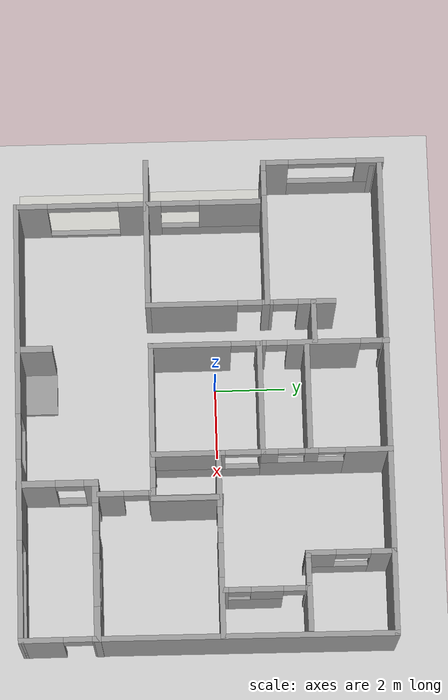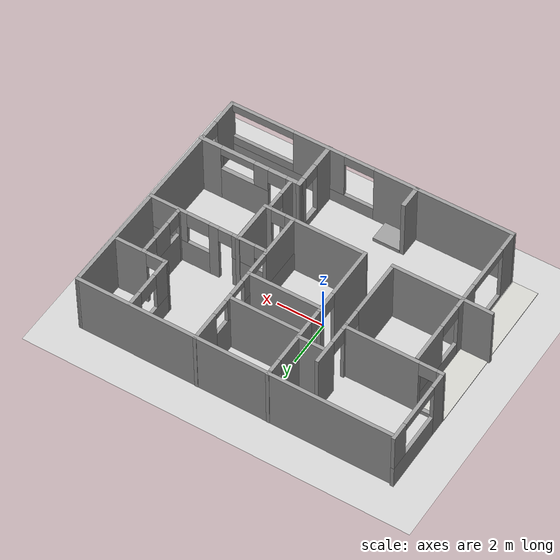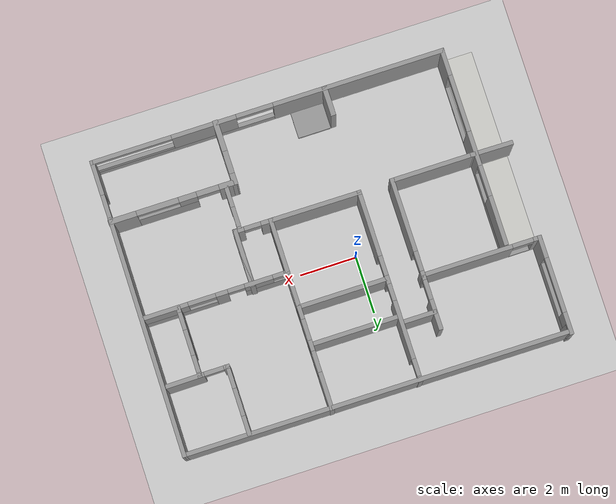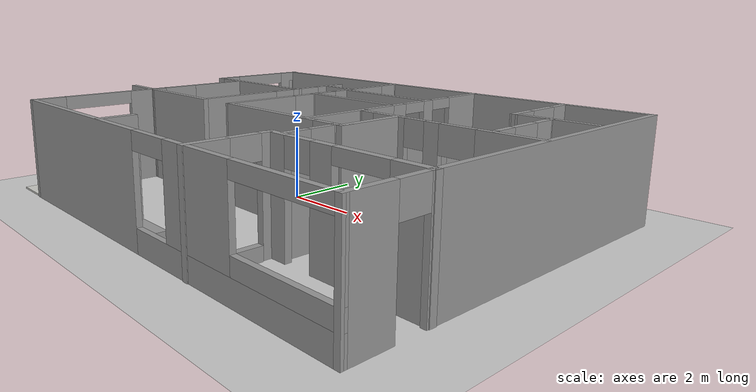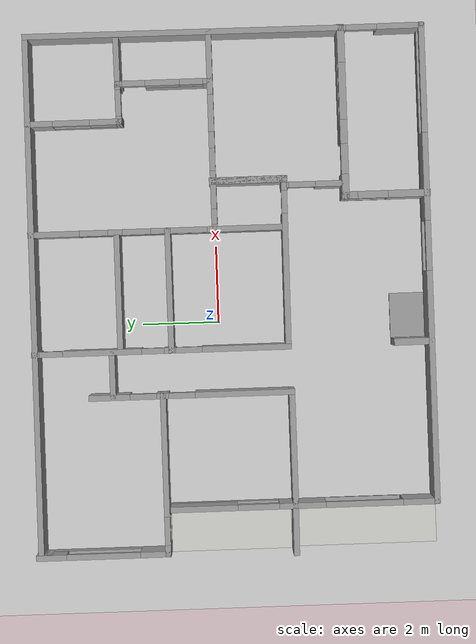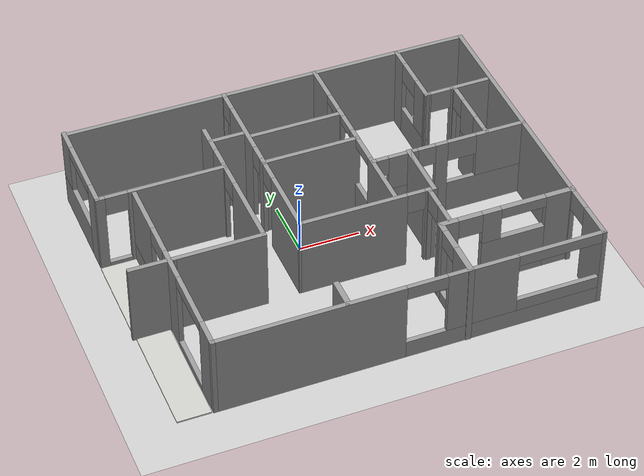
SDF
<sdf version="1.7">
 <world name="default">
  <model name="ground_plane">
   <static>1</static>
   <link name="link">
    <collision name="collision">
     <geometry><plane><normal>0 0 1</normal><size>100 100</size></plane></geometry>
     <surface>
      <contact><collide_bitmask>65535</collide_bitmask></contact>
      <friction><ode><mu>100</mu><mu2>50</mu2></ode></friction>
     </surface>
    </collision>
    <visual name="visual">
     <cast_shadows>0</cast_shadows>
     <geometry><plane><normal>0 0 1</normal><size>100 100</size></plane></geometry>
     <material>
      <script><uri>file://media/materials/scripts/gazebo.material</uri><name>Gazebo/Grey</name></script>
     </material>
    </visual>
   </link>
  </model>
  <model name="VinHouse">
   <pose>0.77427 -0.337194 0 0 -0 0</pose>
   <link name="Stairs_1">
    <visual name="Stairs_1_Visual_0">
     <pose>-0.742932 -4.64062 0.085 0 -0 0</pose>
     <geometry><box><size>1.16 0.904 0.17</size></box></geometry>
     <material>
      <script><uri>file://media/materials/scripts/gazebo.material</uri><name>Gazebo/Grey</name></script>
      <ambient>1 1 1 1</ambient>
     </material>
     <meta><layer>0</layer></meta>
    </visual>
    <collision name="Stairs_1_Collision_0">
     <geometry><box><size>1.16 0.904 0.17</size></box></geometry>
     <pose>-0.742932 -4.64062 0.085 0 -0 0</pose>
    </collision>
   </link>
   <link name="Stairs_3">
    <visual name="Stairs_3_Visual_0">
     <pose>-6.23499 -3.40621 0.025 0 -0 0</pose>
     <geometry><box><size>1.07387 3.64214 0.05</size></box></geometry>
     <material>
      <script><uri>file://media/materials/scripts/gazebo.material</uri><name>Gazebo/CeilingTiled</name></script>
      <ambient>1 1 1 1</ambient>
     </material>
     <meta><layer>0</layer></meta>
    </visual>
    <collision name="Stairs_3_Collision_0">
     <geometry><box><size>1.07387 3.64214 0.05</size></box></geometry>
     <pose>-6.23499 -3.40621 0.025 0 -0 0</pose>
    </collision>
   </link>
   <link name="Stairs_5">
    <visual name="Stairs_5_Visual_0">
     <pose>-6.23214 0.183373 0.025 0 -0 0</pose>
     <geometry><box><size>1.15359 3.17088 0.05</size></box></geometry>
     <material>
      <script><uri>file://media/materials/scripts/gazebo.material</uri><name>Gazebo/CeilingTiled</name></script>
      <ambient>1 1 1 1</ambient>
     </material>
     <meta><layer>0</layer></meta>
    </visual>
    <collision name="Stairs_5_Collision_0">
     <geometry><box><size>1.15359 3.17088 0.05</size></box></geometry>
     <pose>-6.23214 0.183373 0.025 0 -0 0</pose>
    </collision>
   </link>
   <link name="Wall_11">
    <pose>-5.58322 -1.75049 0 0 -0 1.5708</pose>
    <visual name="Wall_11_Visual_0">
     <pose>-3.01958 0 1.4 0 -0 0</pose>
     <geometry><box><size>0.96085 0.15 2.8</size></box></geometry>
     <material>
      <script><uri>file://media/materials/scripts/gazebo.material</uri><name>Gazebo/Grey</name></script>
      <ambient>1 1 1 1</ambient>
     </material>
     <meta><layer>0</layer></meta>
    </visual>
    <collision name="Wall_11_Collision_0">
     <geometry><box><size>0.96085 0.15 2.8</size></box></geometry>
     <pose>-3.01958 0 1.4 0 -0 0</pose>
    </collision>
    <visual name="Wall_11_Visual_1">
     <pose>0.067031 0 1.4 0 -0 0</pose>
     <geometry><box><size>1.21236 0.15 2.8</size></box></geometry>
     <material>
      <script><uri>file://media/materials/scripts/gazebo.material</uri><name>Gazebo/Grey</name></script>
      <ambient>1 1 1 1</ambient>
     </material>
     <meta><layer>0</layer></meta>
    </visual>
    <collision name="Wall_11_Collision_1">
     <geometry><box><size>1.21236 0.15 2.8</size></box></geometry>
     <pose>0.067031 0 1.4 0 -0 0</pose>
    </collision>
    <visual name="Wall_11_Visual_2">
     <pose>-1.53915 0 0 0 -0 0</pose>
     <geometry><box><size>2 0.15 0.37</size></box></geometry>
     <material>
      <script><uri>file://media/materials/scripts/gazebo.material</uri><name>Gazebo/Grey</name></script>
      <ambient>1 1 1 1</ambient>
     </material>
     <meta><layer>0</layer></meta>
    </visual>
    <collision name="Wall_11_Collision_2">
     <geometry><box><size>2 0.15 0.37</size></box></geometry>
     <pose>-1.53915 0 0 0 -0 0</pose>
    </collision>
    <visual name="Wall_11_Visual_3">
     <pose>2.08661 0 0.35 0 -0 0</pose>
     <geometry><box><size>2.82679 0.15 0.7</size></box></geometry>
     <material>
      <script><uri>file://media/materials/scripts/gazebo.material</uri><name>Gazebo/Grey</name></script>
      <ambient>1 1 1 1</ambient>
     </material>
     <meta><layer>0</layer></meta>
    </visual>
    <collision name="Wall_11_Collision_3">
     <geometry><box><size>2.82679 0.15 0.7</size></box></geometry>
     <pose>2.08661 0 0.35 0 -0 0</pose>
    </collision>
    <visual name="Wall_11_Visual_4">
     <pose>2.62661 0 1.75 0 -0 0</pose>
     <geometry><box><size>1.74679 0.15 2.1</size></box></geometry>
     <material>
      <script><uri>file://media/materials/scripts/gazebo.material</uri><name>Gazebo/Grey</name></script>
      <ambient>1 1 1 1</ambient>
     </material>
     <meta><layer>0</layer></meta>
    </visual>
    <collision name="Wall_11_Collision_4">
     <geometry><box><size>1.74679 0.15 2.1</size></box></geometry>
     <pose>2.62661 0 1.75 0 -0 0</pose>
    </collision>
    <visual name="Wall_11_Visual_5">
     <pose>1.21321 0 2.5 0 -0 0</pose>
     <geometry><box><size>1.08 0.15 0.6</size></box></geometry>
     <material>
      <script><uri>file://media/materials/scripts/gazebo.material</uri><name>Gazebo/Grey</name></script>
      <ambient>1 1 1 1</ambient>
     </material>
     <meta><layer>0</layer></meta>
    </visual>
    <collision name="Wall_11_Collision_5">
     <geometry><box><size>1.08 0.15 0.6</size></box></geometry>
     <pose>1.21321 0 2.5 0 -0 0</pose>
    </collision>
    <visual name="Wall_11_Visual_6">
     <pose>-1.53915 0 2.615 0 -0 0</pose>
     <geometry><box><size>2 0.15 0.37</size></box></geometry>
     <material>
      <script><uri>file://media/materials/scripts/gazebo.material</uri><name>Gazebo/Grey</name></script>
      <ambient>1 1 1 1</ambient>
     </material>
     <meta><layer>0</layer></meta>
    </visual>
    <collision name="Wall_11_Collision_6">
     <geometry><box><size>2 0.15 0.37</size></box></geometry>
     <pose>-1.53915 0 2.615 0 -0 0</pose>
    </collision>
   </link>
   <link name="Wall_13">
    <pose>-4.67222 1.84551 0 0 -0 0</pose>
    <visual name="Wall_13_Visual_0">
     <pose>-1.97199 0 1.4 0 -0 0</pose>
     <geometry><box><size>0.30601 0.15 2.8</size></box></geometry>
     <material>
      <script><uri>file://media/materials/scripts/gazebo.material</uri><name>Gazebo/Grey</name></script>
      <ambient>1 1 1 1</ambient>
     </material>
     <meta><layer>0</layer></meta>
    </visual>
    <collision name="Wall_13_Collision_0">
     <geometry><box><size>0.30601 0.15 2.8</size></box></geometry>
     <pose>-1.97199 0 1.4 0 -0 0</pose>
    </collision>
    <visual name="Wall_13_Visual_1">
     <pose>0.518005 0 1.4 0 -0 0</pose>
     <geometry><box><size>3.21399 0.15 2.8</size></box></geometry>
     <material>
      <script><uri>file://media/materials/scripts/gazebo.material</uri><name>Gazebo/Grey</name></script>
      <ambient>1 1 1 1</ambient>
     </material>
     <meta><layer>0</layer></meta>
    </visual>
    <collision name="Wall_13_Collision_1">
     <geometry><box><size>3.21399 0.15 2.8</size></box></geometry>
     <pose>0.518005 0 1.4 0 -0 0</pose>
    </collision>
    <visual name="Wall_13_Visual_2">
     <pose>-1.45399 0 0 0 -0 0</pose>
     <geometry><box><size>0.73 0.15 0.37</size></box></geometry>
     <material>
      <script><uri>file://media/materials/scripts/gazebo.material</uri><name>Gazebo/Grey</name></script>
      <ambient>1 1 1 1</ambient>
     </material>
     <meta><layer>0</layer></meta>
    </visual>
    <collision name="Wall_13_Collision_2">
     <geometry><box><size>0.73 0.15 0.37</size></box></geometry>
     <pose>-1.45399 0 0 0 -0 0</pose>
    </collision>
    <visual name="Wall_13_Visual_3">
     <pose>-1.45399 0 2.465 0 -0 0</pose>
     <geometry><box><size>0.73 0.15 0.67</size></box></geometry>
     <material>
      <script><uri>file://media/materials/scripts/gazebo.material</uri><name>Gazebo/Grey</name></script>
      <ambient>1 1 1 1</ambient>
     </material>
     <meta><layer>0</layer></meta>
    </visual>
    <collision name="Wall_13_Collision_3">
     <geometry><box><size>0.73 0.15 0.67</size></box></geometry>
     <pose>-1.45399 0 2.465 0 -0 0</pose>
    </collision>
   </link>
   <link name="Wall_14">
    <pose>-2.62222 0.170511 0 0 0 -1.5708</pose>
    <visual name="Wall_14_Visual_0">
     <pose>-1.63879 0 1.4 0 -0 0</pose>
     <geometry><box><size>0.222428 0.15 2.8</size></box></geometry>
     <material>
      <script><uri>file://media/materials/scripts/gazebo.material</uri><name>Gazebo/Grey</name></script>
      <ambient>1 1 1 1</ambient>
     </material>
     <meta><layer>0</layer></meta>
    </visual>
    <collision name="Wall_14_Collision_0">
     <geometry><box><size>0.222428 0.15 2.8</size></box></geometry>
     <pose>-1.63879 0 1.4 0 -0 0</pose>
    </collision>
    <visual name="Wall_14_Visual_1">
     <pose>0.456214 0 1.4 0 -0 0</pose>
     <geometry><box><size>2.58757 0.15 2.8</size></box></geometry>
     <material>
      <script><uri>file://media/materials/scripts/gazebo.material</uri><name>Gazebo/Grey</name></script>
      <ambient>1 1 1 1</ambient>
     </material>
     <meta><layer>0</layer></meta>
    </visual>
    <collision name="Wall_14_Collision_1">
     <geometry><box><size>2.58757 0.15 2.8</size></box></geometry>
     <pose>0.456214 0 1.4 0 -0 0</pose>
    </collision>
    <visual name="Wall_14_Visual_2">
     <pose>-1.18257 0 2.435 0 -0 0</pose>
     <geometry><box><size>0.69 0.15 0.73</size></box></geometry>
     <material>
      <script><uri>file://media/materials/scripts/gazebo.material</uri><name>Gazebo/Grey</name></script>
      <ambient>1 1 1 1</ambient>
     </material>
     <meta><layer>0</layer></meta>
    </visual>
    <collision name="Wall_14_Collision_2">
     <geometry><box><size>0.69 0.15 0.73</size></box></geometry>
     <pose>-1.18257 0 2.435 0 -0 0</pose>
    </collision>
   </link>
   <link name="Wall_15">
    <collision name="Wall_15_Collision">
     <geometry><box><size>2.98282 0.15 2.8</size></box></geometry>
     <pose>0 0 1.4 0 -0 0</pose>
    </collision>
    <visual name="Wall_15_Visual">
     <pose>0 0 1.4 0 -0 0</pose>
     <geometry><box><size>2.98282 0.15 2.8</size></box></geometry>
     <material>
      <script><uri>file://media/materials/scripts/gazebo.material</uri><name>Gazebo/Grey</name></script>
      <ambient>1 1 1 1</ambient>
     </material>
     <meta><layer>0</layer></meta>
    </visual>
    <pose>-4.03822 -1.50449 0 0 -0 3.14159</pose>
   </link>
   <link name="Wall_17">
    <collision name="Wall_17_Collision">
     <geometry><box><size>1.5 0.15 2.8</size></box></geometry>
     <pose>0 0 1.4 0 -0 0</pose>
    </collision>
    <visual name="Wall_17_Visual">
     <pose>0 0 1.4 0 -0 0</pose>
     <geometry><box><size>1.5 0.15 2.8</size></box></geometry>
     <material>
      <script><uri>file://media/materials/scripts/gazebo.material</uri><name>Gazebo/Grey</name></script>
      <ambient>1 1 1 1</ambient>
     </material>
     <meta><layer>0</layer></meta>
    </visual>
    <pose>-6.12922 -1.49599 0 0 -0 3.129</pose>
   </link>
   <link name="Wall_19">
    <pose>-2.62222 2.77051 0 0 -0 1.5708</pose>
    <visual name="Wall_19_Visual_0">
     <pose>-0.879696 0 1.4 0 -0 0</pose>
     <geometry><box><size>0.240608 0.15 2.8</size></box></geometry>
     <material>
      <script><uri>file://media/materials/scripts/gazebo.material</uri><name>Gazebo/Grey</name></script>
      <ambient>1 1 1 1</ambient>
     </material>
     <meta><layer>0</layer></meta>
    </visual>
    <collision name="Wall_19_Collision_0">
     <geometry><box><size>0.240608 0.15 2.8</size></box></geometry>
     <pose>-0.879696 0 1.4 0 -0 0</pose>
    </collision>
    <visual name="Wall_19_Visual_1">
     <pose>0.465304 0 1.4 0 -0 0</pose>
     <geometry><box><size>1.06939 0.15 2.8</size></box></geometry>
     <material>
      <script><uri>file://media/materials/scripts/gazebo.material</uri><name>Gazebo/Grey</name></script>
      <ambient>1 1 1 1</ambient>
     </material>
     <meta><layer>0</layer></meta>
    </visual>
    <collision name="Wall_19_Collision_1">
     <geometry><box><size>1.06939 0.15 2.8</size></box></geometry>
     <pose>0.465304 0 1.4 0 -0 0</pose>
    </collision>
    <visual name="Wall_19_Visual_2">
     <pose>-0.414392 0 2.435 0 -0 0</pose>
     <geometry><box><size>0.69 0.15 0.73</size></box></geometry>
     <material>
      <script><uri>file://media/materials/scripts/gazebo.material</uri><name>Gazebo/Grey</name></script>
      <ambient>1 1 1 1</ambient>
     </material>
     <meta><layer>0</layer></meta>
    </visual>
    <collision name="Wall_19_Collision_2">
     <geometry><box><size>0.69 0.15 0.73</size></box></geometry>
     <pose>-0.414392 0 2.435 0 -0 0</pose>
    </collision>
   </link>
   <link name="Wall_2">
    <pose>0.591778 -5.17549 0 0 -0 0</pose>
    <visual name="Wall_2_Visual_0">
     <pose>-3.22257 0 1.4 0 -0 0</pose>
     <geometry><box><size>6.05486 0.15 2.8</size></box></geometry>
     <material>
      <script><uri>file://media/materials/scripts/gazebo.material</uri><name>Gazebo/Grey</name></script>
      <ambient>1 1 1 1</ambient>
     </material>
     <meta><layer>0</layer></meta>
    </visual>
    <collision name="Wall_2_Collision_0">
     <geometry><box><size>6.05486 0.15 2.8</size></box></geometry>
     <pose>-3.22257 0 1.4 0 -0 0</pose>
    </collision>
    <visual name="Wall_2_Visual_1">
     <pose>3.02743 0 0.305 0 -0 0</pose>
     <geometry><box><size>6.44514 0.15 0.61</size></box></geometry>
     <material>
      <script><uri>file://media/materials/scripts/gazebo.material</uri><name>Gazebo/Grey</name></script>
      <ambient>1 1 1 1</ambient>
     </material>
     <meta><layer>0</layer></meta>
    </visual>
    <collision name="Wall_2_Collision_1">
     <geometry><box><size>6.44514 0.15 0.61</size></box></geometry>
     <pose>3.02743 0 0.305 0 -0 0</pose>
    </collision>
    <visual name="Wall_2_Visual_2">
     <pose>2.24473 0 1.705 0 -0 0</pose>
     <geometry><box><size>2.27975 0.15 2.19</size></box></geometry>
     <material>
      <script><uri>file://media/materials/scripts/gazebo.material</uri><name>Gazebo/Grey</name></script>
      <ambient>1 1 1 1</ambient>
     </material>
     <meta><layer>0</layer></meta>
    </visual>
    <collision name="Wall_2_Collision_2">
     <geometry><box><size>2.27975 0.15 2.19</size></box></geometry>
     <pose>2.24473 0 1.705 0 -0 0</pose>
    </collision>
    <visual name="Wall_2_Visual_3">
     <pose>4.81731 0 0.82 0 -0 0</pose>
     <geometry><box><size>2.86539 0.15 0.42</size></box></geometry>
     <material>
      <script><uri>file://media/materials/scripts/gazebo.material</uri><name>Gazebo/Grey</name></script>
      <ambient>1 1 1 1</ambient>
     </material>
     <meta><layer>0</layer></meta>
    </visual>
    <collision name="Wall_2_Collision_3">
     <geometry><box><size>2.86539 0.15 0.42</size></box></geometry>
     <pose>4.81731 0 0.82 0 -0 0</pose>
    </collision>
    <visual name="Wall_2_Visual_4">
     <pose>6.2023 0 1.915 0 -0 0</pose>
     <geometry><box><size>0.095389 0.15 1.77</size></box></geometry>
     <material>
      <script><uri>file://media/materials/scripts/gazebo.material</uri><name>Gazebo/Grey</name></script>
      <ambient>1 1 1 1</ambient>
     </material>
     <meta><layer>0</layer></meta>
    </visual>
    <collision name="Wall_2_Collision_4">
     <geometry><box><size>0.095389 0.15 1.77</size></box></geometry>
     <pose>6.2023 0 1.915 0 -0 0</pose>
    </collision>
    <visual name="Wall_2_Visual_5">
     <pose>0.454859 0 2.575 0 -0 0</pose>
     <geometry><box><size>1.3 0.15 0.45</size></box></geometry>
     <material>
      <script><uri>file://media/materials/scripts/gazebo.material</uri><name>Gazebo/Grey</name></script>
      <ambient>1 1 1 1</ambient>
     </material>
     <meta><layer>0</layer></meta>
    </visual>
    <collision name="Wall_2_Collision_5">
     <geometry><box><size>1.3 0.15 0.45</size></box></geometry>
     <pose>0.454859 0 2.575 0 -0 0</pose>
    </collision>
    <visual name="Wall_2_Visual_6">
     <pose>4.76961 0 2.615 0 -0 0</pose>
     <geometry><box><size>2.77 0.15 0.37</size></box></geometry>
     <material>
      <script><uri>file://media/materials/scripts/gazebo.material</uri><name>Gazebo/Grey</name></script>
      <ambient>1 1 1 1</ambient>
     </material>
     <meta><layer>0</layer></meta>
    </visual>
    <collision name="Wall_2_Collision_6">
     <geometry><box><size>2.77 0.15 0.37</size></box></geometry>
     <pose>4.76961 0 2.615 0 -0 0</pose>
    </collision>
   </link>
   <link name="Wall_21">
    <collision name="Wall_21_Collision">
     <geometry><box><size>1.25 0.15 2.8</size></box></geometry>
     <pose>0 0 1.4 0 -0 0</pose>
    </collision>
    <visual name="Wall_21_Visual">
     <pose>0 0 1.4 0 -0 0</pose>
     <geometry><box><size>1.25 0.15 2.8</size></box></geometry>
     <material>
      <script><uri>file://media/materials/scripts/gazebo.material</uri><name>Gazebo/Grey</name></script>
      <ambient>1 1 1 1</ambient>
     </material>
     <meta><layer>0</layer></meta>
    </visual>
    <pose>-2.03822 3.13551 0 0 -0 0</pose>
   </link>
   <link name="Wall_23">
    <pose>-1.44622 1.84351 0 0 0 -1.5708</pose>
    <visual name="Wall_23_Visual_0">
     <pose>-3.27076 0 1.4 0 -0 0</pose>
     <geometry><box><size>0.208484 0.15 2.8</size></box></geometry>
     <material>
      <script><uri>file://media/materials/scripts/gazebo.material</uri><name>Gazebo/Grey</name></script>
      <ambient>1 1 1 1</ambient>
     </material>
     <meta><layer>0</layer></meta>
    </visual>
    <collision name="Wall_23_Collision_0">
     <geometry><box><size>0.208484 0.15 2.8</size></box></geometry>
     <pose>-3.27076 0 1.4 0 -0 0</pose>
    </collision>
    <visual name="Wall_23_Visual_1">
     <pose>-1.54241 0 1.4 0 -0 0</pose>
     <geometry><box><size>2.04821 0.15 2.8</size></box></geometry>
     <material>
      <script><uri>file://media/materials/scripts/gazebo.material</uri><name>Gazebo/Grey</name></script>
      <ambient>1 1 1 1</ambient>
     </material>
     <meta><layer>0</layer></meta>
    </visual>
    <collision name="Wall_23_Collision_1">
     <geometry><box><size>2.04821 0.15 2.8</size></box></geometry>
     <pose>-1.54241 0 1.4 0 -0 0</pose>
    </collision>
    <visual name="Wall_23_Visual_2">
     <pose>0.218536 0 1.4 0 -0 0</pose>
     <geometry><box><size>0.293673 0.15 2.8</size></box></geometry>
     <material>
      <script><uri>file://media/materials/scripts/gazebo.material</uri><name>Gazebo/Grey</name></script>
      <ambient>1 1 1 1</ambient>
     </material>
     <meta><layer>0</layer></meta>
    </visual>
    <collision name="Wall_23_Collision_2">
     <geometry><box><size>0.293673 0.15 2.8</size></box></geometry>
     <pose>0.218536 0 1.4 0 -0 0</pose>
    </collision>
    <visual name="Wall_23_Visual_3">
     <pose>2.21519 0 1.4 0 -0 0</pose>
     <geometry><box><size>2.31963 0.15 2.8</size></box></geometry>
     <material>
      <script><uri>file://media/materials/scripts/gazebo.material</uri><name>Gazebo/Grey</name></script>
      <ambient>1 1 1 1</ambient>
     </material>
     <meta><layer>0</layer></meta>
    </visual>
    <collision name="Wall_23_Collision_3">
     <geometry><box><size>2.31963 0.15 2.8</size></box></geometry>
     <pose>2.21519 0 1.4 0 -0 0</pose>
    </collision>
    <visual name="Wall_23_Visual_4">
     <pose>-2.86652 0 2.44 0 -0 0</pose>
     <geometry><box><size>0.6 0.15 0.72</size></box></geometry>
     <material>
      <script><uri>file://media/materials/scripts/gazebo.material</uri><name>Gazebo/Grey</name></script>
      <ambient>1 1 1 1</ambient>
     </material>
     <meta><layer>0</layer></meta>
    </visual>
    <collision name="Wall_23_Collision_4">
     <geometry><box><size>0.6 0.15 0.72</size></box></geometry>
     <pose>-2.86652 0 2.44 0 -0 0</pose>
    </collision>
    <visual name="Wall_23_Visual_5">
     <pose>-0.223301 0 2.45 0 -0 0</pose>
     <geometry><box><size>0.59 0.15 0.7</size></box></geometry>
     <material>
      <script><uri>file://media/materials/scripts/gazebo.material</uri><name>Gazebo/Grey</name></script>
      <ambient>1 1 1 1</ambient>
     </material>
     <meta><layer>0</layer></meta>
    </visual>
    <collision name="Wall_23_Collision_5">
     <geometry><box><size>0.59 0.15 0.7</size></box></geometry>
     <pose>-0.223301 0 2.45 0 -0 0</pose>
    </collision>
    <visual name="Wall_23_Visual_6">
     <pose>0.710372 0 2.45 0 -0 0</pose>
     <geometry><box><size>0.69 0.15 0.7</size></box></geometry>
     <material>
      <script><uri>file://media/materials/scripts/gazebo.material</uri><name>Gazebo/Grey</name></script>
      <ambient>1 1 1 1</ambient>
     </material>
     <meta><layer>0</layer></meta>
    </visual>
    <collision name="Wall_23_Collision_6">
     <geometry><box><size>0.69 0.15 0.7</size></box></geometry>
     <pose>0.710372 0 2.45 0 -0 0</pose>
    </collision>
   </link>
   <link name="Wall_24">
    <pose>0.728778 -1.46799 0 0 0 -0.005287</pose>
    <visual name="Wall_24_Visual_0">
     <pose>-0.482727 0 1.4 0 -0 0</pose>
     <geometry><box><size>3.53455 0.15 2.8</size></box></geometry>
     <material>
      <script><uri>file://media/materials/scripts/gazebo.material</uri><name>Gazebo/Grey</name></script>
      <ambient>1 1 1 1</ambient>
     </material>
     <meta><layer>0</layer></meta>
    </visual>
    <collision name="Wall_24_Collision_0">
     <geometry><box><size>3.53455 0.15 2.8</size></box></geometry>
     <pose>-0.482727 0 1.4 0 -0 0</pose>
    </collision>
    <visual name="Wall_24_Visual_1">
     <pose>2.06227 0 1.4 0 -0 0</pose>
     <geometry><box><size>0.375454 0.15 2.8</size></box></geometry>
     <material>
      <script><uri>file://media/materials/scripts/gazebo.material</uri><name>Gazebo/Grey</name></script>
      <ambient>1 1 1 1</ambient>
     </material>
     <meta><layer>0</layer></meta>
    </visual>
    <collision name="Wall_24_Collision_1">
     <geometry><box><size>0.375454 0.15 2.8</size></box></geometry>
     <pose>2.06227 0 1.4 0 -0 0</pose>
    </collision>
    <visual name="Wall_24_Visual_2">
     <pose>1.57955 0 2.45 0 -0 0</pose>
     <geometry><box><size>0.59 0.15 0.7</size></box></geometry>
     <material>
      <script><uri>file://media/materials/scripts/gazebo.material</uri><name>Gazebo/Grey</name></script>
      <ambient>1 1 1 1</ambient>
     </material>
     <meta><layer>0</layer></meta>
    </visual>
    <collision name="Wall_24_Collision_2">
     <geometry><box><size>0.59 0.15 0.7</size></box></geometry>
     <pose>1.57955 0 2.45 0 -0 0</pose>
    </collision>
   </link>
   <link name="Wall_25">
    <collision name="Wall_25_Collision">
     <geometry><box><size>2 0.15 2.8</size></box></geometry>
     <pose>0 0 1.4 0 -0 0</pose>
    </collision>
    <visual name="Wall_25_Visual">
     <pose>0 0 1.4 0 -0 0</pose>
     <geometry><box><size>2 0.15 2.8</size></box></geometry>
     <material>
      <script><uri>file://media/materials/scripts/gazebo.material</uri><name>Gazebo/Grey</name></script>
      <ambient>1 1 1 1</ambient>
     </material>
     <meta><layer>0</layer></meta>
    </visual>
    <pose>2.90378 -0.554489 0 0 -0 1.5708</pose>
   </link>
   <link name="Wall_28">
    <collision name="Wall_28_Collision">
     <geometry><box><size>0.15 0.15 2.5</size></box></geometry>
     <pose>0 0 1.25 0 -0 0</pose>
    </collision>
    <visual name="Wall_28_Visual">
     <pose>0 0 1.25 0 -0 0</pose>
     <geometry><box><size>0.15 0.15 2.5</size></box></geometry>
     <material>
      <script><uri>file://media/materials/scripts/gazebo.material</uri><name>Gazebo/Grey</name></script>
      <ambient>1 1 1 1</ambient>
     </material>
     <meta><layer>0</layer></meta>
    </visual>
    <pose>-6.722 4.9453 0 0 -0 0</pose>
   </link>
   <link name="Wall_3">
    <pose>6.76441 -4.12685 0 0 -0 1.57306</pose>
    <visual name="Wall_3_Visual_0">
     <pose>-0.509705 0 1.4 0 -0 0</pose>
     <geometry><box><size>1.22849 0.15 2.8</size></box></geometry>
     <material>
      <script><uri>file://media/materials/scripts/gazebo.material</uri><name>Gazebo/Grey</name></script>
      <ambient>1 1 1 1</ambient>
     </material>
     <meta><layer>0</layer></meta>
    </visual>
    <collision name="Wall_3_Collision_0">
     <geometry><box><size>1.22849 0.15 2.8</size></box></geometry>
     <pose>-0.509705 0 1.4 0 -0 0</pose>
    </collision>
    <visual name="Wall_3_Visual_1">
     <pose>1.01425 0 1.4 0 -0 0</pose>
     <geometry><box><size>0.21941 0.15 2.8</size></box></geometry>
     <material>
      <script><uri>file://media/materials/scripts/gazebo.material</uri><name>Gazebo/Grey</name></script>
      <ambient>1 1 1 1</ambient>
     </material>
     <meta><layer>0</layer></meta>
    </visual>
    <collision name="Wall_3_Collision_1">
     <geometry><box><size>0.21941 0.15 2.8</size></box></geometry>
     <pose>1.01425 0 1.4 0 -0 0</pose>
    </collision>
    <visual name="Wall_3_Visual_2">
     <pose>0.504542 0 2.445 0 -0 0</pose>
     <geometry><box><size>0.8 0.15 0.71</size></box></geometry>
     <material>
      <script><uri>file://media/materials/scripts/gazebo.material</uri><name>Gazebo/Grey</name></script>
      <ambient>1 1 1 1</ambient>
     </material>
     <meta><layer>0</layer></meta>
    </visual>
    <collision name="Wall_3_Collision_2">
     <geometry><box><size>0.8 0.15 0.71</size></box></geometry>
     <pose>0.504542 0 2.445 0 -0 0</pose>
    </collision>
   </link>
   <link name="Wall_33">
    <pose>-6.72222 3.52051 0 0 -0 1.5708</pose>
    <visual name="Wall_33_Visual_0">
     <pose>-1.35388 0 1.4 0 -0 0</pose>
     <geometry><box><size>0.792235 0.15 2.8</size></box></geometry>
     <material>
      <script><uri>file://media/materials/scripts/gazebo.material</uri><name>Gazebo/Grey</name></script>
      <ambient>1 1 1 1</ambient>
     </material>
     <meta><layer>0</layer></meta>
    </visual>
    <collision name="Wall_33_Collision_0">
     <geometry><box><size>0.792235 0.15 2.8</size></box></geometry>
     <pose>-1.35388 0 1.4 0 -0 0</pose>
    </collision>
    <visual name="Wall_33_Visual_1">
     <pose>0.396117 0 0.53 0 -0 0</pose>
     <geometry><box><size>2.70777 0.15 1.06</size></box></geometry>
     <material>
      <script><uri>file://media/materials/scripts/gazebo.material</uri><name>Gazebo/Grey</name></script>
      <ambient>1 1 1 1</ambient>
     </material>
     <meta><layer>0</layer></meta>
    </visual>
    <collision name="Wall_33_Collision_1">
     <geometry><box><size>2.70777 0.15 1.06</size></box></geometry>
     <pose>0.396117 0 0.53 0 -0 0</pose>
    </collision>
    <visual name="Wall_33_Visual_2">
     <pose>1.35612 0 1.93 0 -0 0</pose>
     <geometry><box><size>0.787765 0.15 1.74</size></box></geometry>
     <material>
      <script><uri>file://media/materials/scripts/gazebo.material</uri><name>Gazebo/Grey</name></script>
      <ambient>1 1 1 1</ambient>
     </material>
     <meta><layer>0</layer></meta>
    </visual>
    <collision name="Wall_33_Collision_2">
     <geometry><box><size>0.787765 0.15 1.74</size></box></geometry>
     <pose>1.35612 0 1.93 0 -0 0</pose>
    </collision>
    <visual name="Wall_33_Visual_3">
     <pose>0.002235 0 2.62 0 -0 0</pose>
     <geometry><box><size>1.92 0.15 0.36</size></box></geometry>
     <material>
      <script><uri>file://media/materials/scripts/gazebo.material</uri><name>Gazebo/Grey</name></script>
      <ambient>1 1 1 1</ambient>
     </material>
     <meta><layer>0</layer></meta>
    </visual>
    <collision name="Wall_33_Collision_3">
     <geometry><box><size>1.92 0.15 0.36</size></box></geometry>
     <pose>0.002235 0 2.62 0 -0 0</pose>
    </collision>
   </link>
   <link name="Wall_35">
    <collision name="Wall_35_Collision">
     <geometry><box><size>8.3391 0.15 2.8</size></box></geometry>
     <pose>0 0 1.4 0 -0 0</pose>
    </collision>
    <visual name="Wall_35_Visual">
     <pose>0 0 1.4 0 -0 0</pose>
     <geometry><box><size>8.3391 0.15 2.8</size></box></geometry>
     <material>
      <script><uri>file://media/materials/scripts/gazebo.material</uri><name>Gazebo/Grey</name></script>
      <ambient>1 1 1 1</ambient>
     </material>
     <meta><layer>0</layer></meta>
    </visual>
    <pose>6.78474 1.0163 0 0 -0 1.56591</pose>
   </link>
   <link name="Wall_36">
    <collision name="Wall_36_Collision">
     <geometry><box><size>13.5353 0.15 2.8</size></box></geometry>
     <pose>0 0 1.4 0 -0 0</pose>
    </collision>
    <visual name="Wall_36_Visual">
     <pose>0 0 1.4 0 -0 0</pose>
     <geometry><box><size>13.5353 0.15 2.8</size></box></geometry>
     <material>
      <script><uri>file://media/materials/scripts/gazebo.material</uri><name>Gazebo/Grey</name></script>
      <ambient>1 1 1 1</ambient>
     </material>
     <meta><layer>0</layer></meta>
    </visual>
    <pose>0.109405 5.12366 0 0 -0 3.13967</pose>
   </link>
   <link name="Wall_38">
    <pose>1.6599 1.83451 0 0 0 -1.5708</pose>
    <visual name="Wall_38_Visual_0">
     <pose>-2.70534 0 1.4 0 -0 0</pose>
     <geometry><box><size>1.33931 0.15 2.8</size></box></geometry>
     <material>
      <script><uri>file://media/materials/scripts/gazebo.material</uri><name>Gazebo/Grey</name></script>
      <ambient>1 1 1 1</ambient>
     </material>
     <meta><layer>0</layer></meta>
    </visual>
    <collision name="Wall_38_Collision_0">
     <geometry><box><size>1.33931 0.15 2.8</size></box></geometry>
     <pose>-2.70534 0 1.4 0 -0 0</pose>
    </collision>
    <visual name="Wall_38_Visual_1">
     <pose>-0.868631 0 0.83 0 -0 0</pose>
     <geometry><box><size>2.33411 0.15 1.66</size></box></geometry>
     <material>
      <script><uri>file://media/materials/scripts/gazebo.material</uri><name>Gazebo/Grey</name></script>
      <ambient>1 1 1 1</ambient>
     </material>
     <meta><layer>0</layer></meta>
    </visual>
    <collision name="Wall_38_Collision_1">
     <geometry><box><size>2.33411 0.15 1.66</size></box></geometry>
     <pose>-0.868631 0 0.83 0 -0 0</pose>
    </collision>
    <visual name="Wall_38_Visual_2">
     <pose>1.83671 0 0.495 0 -0 0</pose>
     <geometry><box><size>3.07658 0.15 0.99</size></box></geometry>
     <material>
      <script><uri>file://media/materials/scripts/gazebo.material</uri><name>Gazebo/Grey</name></script>
      <ambient>1 1 1 1</ambient>
     </material>
     <meta><layer>0</layer></meta>
    </visual>
    <collision name="Wall_38_Collision_2">
     <geometry><box><size>3.07658 0.15 0.99</size></box></geometry>
     <pose>1.83671 0 0.495 0 -0 0</pose>
    </collision>
    <visual name="Wall_38_Visual_3">
     <pose>2.33171 0 1.895 0 -0 0</pose>
     <geometry><box><size>2.08658 0.15 1.81</size></box></geometry>
     <material>
      <script><uri>file://media/materials/scripts/gazebo.material</uri><name>Gazebo/Grey</name></script>
      <ambient>1 1 1 1</ambient>
     </material>
     <meta><layer>0</layer></meta>
    </visual>
    <collision name="Wall_38_Collision_3">
     <geometry><box><size>2.08658 0.15 1.81</size></box></geometry>
     <pose>2.33171 0 1.895 0 -0 0</pose>
    </collision>
    <visual name="Wall_38_Visual_4">
     <pose>-1.1068 0 2.23 0 -0 0</pose>
     <geometry><box><size>0.377778 0.15 1.14</size></box></geometry>
     <material>
      <script><uri>file://media/materials/scripts/gazebo.material</uri><name>Gazebo/Grey</name></script>
      <ambient>1 1 1 1</ambient>
     </material>
     <meta><layer>0</layer></meta>
    </visual>
    <collision name="Wall_38_Collision_4">
     <geometry><box><size>0.377778 0.15 1.14</size></box></geometry>
     <pose>-1.1068 0 2.23 0 -0 0</pose>
    </collision>
    <visual name="Wall_38_Visual_5">
     <pose>0.060258 0 2.23 0 -0 0</pose>
     <geometry><box><size>0.476333 0.15 1.14</size></box></geometry>
     <material>
      <script><uri>file://media/materials/scripts/gazebo.material</uri><name>Gazebo/Grey</name></script>
      <ambient>1 1 1 1</ambient>
     </material>
     <meta><layer>0</layer></meta>
    </visual>
    <collision name="Wall_38_Collision_5">
     <geometry><box><size>0.476333 0.15 1.14</size></box></geometry>
     <pose>0.060258 0 2.23 0 -0 0</pose>
    </collision>
    <visual name="Wall_38_Visual_6">
     <pose>0.793424 0 2.64 0 -0 0</pose>
     <geometry><box><size>0.99 0.15 0.32</size></box></geometry>
     <material>
      <script><uri>file://media/materials/scripts/gazebo.material</uri><name>Gazebo/Grey</name></script>
      <ambient>1 1 1 1</ambient>
     </material>
     <meta><layer>0</layer></meta>
    </visual>
    <collision name="Wall_38_Collision_6">
     <geometry><box><size>0.99 0.15 0.32</size></box></geometry>
     <pose>0.793424 0 2.64 0 -0 0</pose>
    </collision>
    <visual name="Wall_38_Visual_7">
     <pose>-1.66569 0 2.66 0 -0 0</pose>
     <geometry><box><size>0.74 0.15 0.28</size></box></geometry>
     <material>
      <script><uri>file://media/materials/scripts/gazebo.material</uri><name>Gazebo/Grey</name></script>
      <ambient>1 1 1 1</ambient>
     </material>
     <meta><layer>0</layer></meta>
    </visual>
    <collision name="Wall_38_Collision_7">
     <geometry><box><size>0.74 0.15 0.28</size></box></geometry>
     <pose>-1.66569 0 2.66 0 -0 0</pose>
    </collision>
    <visual name="Wall_38_Visual_8">
     <pose>-0.547909 0 2.66 0 -0 0</pose>
     <geometry><box><size>0.74 0.15 0.28</size></box></geometry>
     <material>
      <script><uri>file://media/materials/scripts/gazebo.material</uri><name>Gazebo/Grey</name></script>
      <ambient>1 1 1 1</ambient>
     </material>
     <meta><layer>0</layer></meta>
    </visual>
    <collision name="Wall_38_Collision_8">
     <geometry><box><size>0.74 0.15 0.28</size></box></geometry>
     <pose>-0.547909 0 2.66 0 -0 0</pose>
    </collision>
   </link>
   <link name="Wall_4">
    <pose>4.58941 -3.07685 0 0 -0 3.14097</pose>
    <visual name="Wall_4_Visual_0">
     <pose>-1.77354 0 1.4 0 -0 0</pose>
     <geometry><box><size>0.988165 0.19 2.8</size></box></geometry>
     <material>
      <script><uri>file://media/materials/scripts/gazebo.material</uri><name>Gazebo/Grey</name></script>
      <ambient>1 1 1 1</ambient>
     </material>
     <meta><layer>0</layer></meta>
    </visual>
    <collision name="Wall_4_Collision_0">
     <geometry><box><size>0.988165 0.19 2.8</size></box></geometry>
     <pose>-1.77354 0 1.4 0 -0 0</pose>
    </collision>
    <visual name="Wall_4_Visual_1">
     <pose>1.94252 0 1.4 0 -0 0</pose>
     <geometry><box><size>0.650208 0.19 2.8</size></box></geometry>
     <material>
      <script><uri>file://media/materials/scripts/gazebo.material</uri><name>Gazebo/Grey</name></script>
      <ambient>1 1 1 1</ambient>
     </material>
     <meta><layer>0</layer></meta>
    </visual>
    <collision name="Wall_4_Collision_1">
     <geometry><box><size>0.650208 0.19 2.8</size></box></geometry>
     <pose>1.94252 0 1.4 0 -0 0</pose>
    </collision>
    <visual name="Wall_4_Visual_2">
     <pose>-0.226022 0 0.82 0 -0 0</pose>
     <geometry><box><size>2.10688 0.19 1.64</size></box></geometry>
     <material>
      <script><uri>file://media/materials/scripts/gazebo.material</uri><name>Gazebo/Grey</name></script>
      <ambient>1 1 1 1</ambient>
     </material>
     <meta><layer>0</layer></meta>
    </visual>
    <collision name="Wall_4_Collision_2">
     <geometry><box><size>2.10688 0.19 1.64</size></box></geometry>
     <pose>-0.226022 0 0.82 0 -0 0</pose>
    </collision>
    <visual name="Wall_4_Visual_3">
     <pose>0.513978 0 2.22 0 -0 0</pose>
     <geometry><box><size>0.626881 0.19 1.16</size></box></geometry>
     <material>
      <script><uri>file://media/materials/scripts/gazebo.material</uri><name>Gazebo/Grey</name></script>
      <ambient>1 1 1 1</ambient>
     </material>
     <meta><layer>0</layer></meta>
    </visual>
    <collision name="Wall_4_Collision_3">
     <geometry><box><size>0.626881 0.19 1.16</size></box></geometry>
     <pose>0.513978 0 2.22 0 -0 0</pose>
    </collision>
    <visual name="Wall_4_Visual_4">
     <pose>1.22242 0 2.45 0 -0 0</pose>
     <geometry><box><size>0.79 0.19 0.7</size></box></geometry>
     <material>
      <script><uri>file://media/materials/scripts/gazebo.material</uri><name>Gazebo/Grey</name></script>
      <ambient>1 1 1 1</ambient>
     </material>
     <meta><layer>0</layer></meta>
    </visual>
    <collision name="Wall_4_Collision_4">
     <geometry><box><size>0.79 0.19 0.7</size></box></geometry>
     <pose>1.22242 0 2.45 0 -0 0</pose>
    </collision>
    <visual name="Wall_4_Visual_5">
     <pose>-0.539462 0 2.615 0 -0 0</pose>
     <geometry><box><size>1.48 0.19 0.37</size></box></geometry>
     <material>
      <script><uri>file://media/materials/scripts/gazebo.material</uri><name>Gazebo/Grey</name></script>
      <ambient>1 1 1 1</ambient>
     </material>
     <meta><layer>0</layer></meta>
    </visual>
    <collision name="Wall_4_Collision_5">
     <geometry><box><size>1.48 0.19 0.37</size></box></geometry>
     <pose>-0.539462 0 2.615 0 -0 0</pose>
    </collision>
   </link>
   <link name="Wall_40">
    <pose>4.21478 0.354511 0 0 -0 0</pose>
    <visual name="Wall_40_Visual_0">
     <pose>-2.52811 0 1.4 0 -0 0</pose>
     <geometry><box><size>0.193785 0.15 2.8</size></box></geometry>
     <material>
      <script><uri>file://media/materials/scripts/gazebo.material</uri><name>Gazebo/Grey</name></script>
      <ambient>1 1 1 1</ambient>
     </material>
     <meta><layer>0</layer></meta>
    </visual>
    <collision name="Wall_40_Collision_0">
     <geometry><box><size>0.193785 0.15 2.8</size></box></geometry>
     <pose>-2.52811 0 1.4 0 -0 0</pose>
    </collision>
    <visual name="Wall_40_Visual_1">
     <pose>-0.241553 0 1.4 0 -0 0</pose>
     <geometry><box><size>0.418543 0.15 2.8</size></box></geometry>
     <material>
      <script><uri>file://media/materials/scripts/gazebo.material</uri><name>Gazebo/Grey</name></script>
      <ambient>1 1 1 1</ambient>
     </material>
     <meta><layer>0</layer></meta>
    </visual>
    <collision name="Wall_40_Collision_1">
     <geometry><box><size>0.418543 0.15 2.8</size></box></geometry>
     <pose>-0.241553 0 1.4 0 -0 0</pose>
    </collision>
    <visual name="Wall_40_Visual_2">
     <pose>-1.73602 0 0.77 0 -0 0</pose>
     <geometry><box><size>1.39039 0.15 1.54</size></box></geometry>
     <material>
      <script><uri>file://media/materials/scripts/gazebo.material</uri><name>Gazebo/Grey</name></script>
      <ambient>1 1 1 1</ambient>
     </material>
     <meta><layer>0</layer></meta>
    </visual>
    <collision name="Wall_40_Collision_2">
     <geometry><box><size>1.39039 0.15 1.54</size></box></geometry>
     <pose>-1.73602 0 0.77 0 -0 0</pose>
    </collision>
    <visual name="Wall_40_Visual_3">
     <pose>1.29636 0 0.585 0 -0 0</pose>
     <geometry><box><size>2.65728 0.15 1.17</size></box></geometry>
     <material>
      <script><uri>file://media/materials/scripts/gazebo.material</uri><name>Gazebo/Grey</name></script>
      <ambient>1 1 1 1</ambient>
     </material>
     <meta><layer>0</layer></meta>
    </visual>
    <collision name="Wall_40_Collision_3">
     <geometry><box><size>2.65728 0.15 1.17</size></box></geometry>
     <pose>1.29636 0 0.585 0 -0 0</pose>
    </collision>
    <visual name="Wall_40_Visual_4">
     <pose>1.78136 0 1.985 0 -0 0</pose>
     <geometry><box><size>1.68728 0.15 1.63</size></box></geometry>
     <material>
      <script><uri>file://media/materials/scripts/gazebo.material</uri><name>Gazebo/Grey</name></script>
      <ambient>1 1 1 1</ambient>
     </material>
     <meta><layer>0</layer></meta>
    </visual>
    <collision name="Wall_40_Collision_4">
     <geometry><box><size>1.68728 0.15 1.63</size></box></geometry>
     <pose>1.78136 0 1.985 0 -0 0</pose>
    </collision>
    <visual name="Wall_40_Visual_5">
     <pose>-1.53602 0 2.17 0 -0 0</pose>
     <geometry><box><size>0.990391 0.15 1.26</size></box></geometry>
     <material>
      <script><uri>file://media/materials/scripts/gazebo.material</uri><name>Gazebo/Grey</name></script>
      <ambient>1 1 1 1</ambient>
     </material>
     <meta><layer>0</layer></meta>
    </visual>
    <collision name="Wall_40_Collision_5">
     <geometry><box><size>0.990391 0.15 1.26</size></box></geometry>
     <pose>-1.53602 0 2.17 0 -0 0</pose>
    </collision>
    <visual name="Wall_40_Visual_6">
     <pose>0.452719 0 2.435 0 -0 0</pose>
     <geometry><box><size>0.97 0.15 0.73</size></box></geometry>
     <material>
      <script><uri>file://media/materials/scripts/gazebo.material</uri><name>Gazebo/Grey</name></script>
      <ambient>1 1 1 1</ambient>
     </material>
     <meta><layer>0</layer></meta>
    </visual>
    <collision name="Wall_40_Collision_6">
     <geometry><box><size>0.97 0.15 0.73</size></box></geometry>
     <pose>0.452719 0 2.435 0 -0 0</pose>
    </collision>
    <visual name="Wall_40_Visual_7">
     <pose>-0.745824 0 2.45 0 -0 0</pose>
     <geometry><box><size>0.59 0.15 0.7</size></box></geometry>
     <material>
      <script><uri>file://media/materials/scripts/gazebo.material</uri><name>Gazebo/Grey</name></script>
      <ambient>1 1 1 1</ambient>
     </material>
     <meta><layer>0</layer></meta>
    </visual>
    <collision name="Wall_40_Collision_7">
     <geometry><box><size>0.59 0.15 0.7</size></box></geometry>
     <pose>-0.745824 0 2.45 0 -0 0</pose>
    </collision>
    <visual name="Wall_40_Visual_8">
     <pose>-2.23122 0 2.475 0 -0 0</pose>
     <geometry><box><size>0.4 0.15 0.65</size></box></geometry>
     <material>
      <script><uri>file://media/materials/scripts/gazebo.material</uri><name>Gazebo/Grey</name></script>
      <ambient>1 1 1 1</ambient>
     </material>
     <meta><layer>0</layer></meta>
    </visual>
    <collision name="Wall_40_Collision_8">
     <geometry><box><size>0.4 0.15 0.65</size></box></geometry>
     <pose>-2.23122 0 2.475 0 -0 0</pose>
    </collision>
   </link>
   <link name="Wall_43">
    <pose>5.50478 1.57151 0 0 -0 1.5708</pose>
    <visual name="Wall_43_Visual_0">
     <pose>-1.14551 0 1.4 0 -0 0</pose>
     <geometry><box><size>0.208977 0.15 2.8</size></box></geometry>
     <material>
      <script><uri>file://media/materials/scripts/gazebo.material</uri><name>Gazebo/Grey</name></script>
      <ambient>1 1 1 1</ambient>
     </material>
     <meta><layer>0</layer></meta>
    </visual>
    <collision name="Wall_43_Collision_0">
     <geometry><box><size>0.208977 0.15 2.8</size></box></geometry>
     <pose>-1.14551 0 1.4 0 -0 0</pose>
    </collision>
    <visual name="Wall_43_Visual_1">
     <pose>1.15765 0 1.4 0 -0 0</pose>
     <geometry><box><size>0.184691 0.15 2.8</size></box></geometry>
     <material>
      <script><uri>file://media/materials/scripts/gazebo.material</uri><name>Gazebo/Grey</name></script>
      <ambient>1 1 1 1</ambient>
     </material>
     <meta><layer>0</layer></meta>
    </visual>
    <collision name="Wall_43_Collision_1">
     <geometry><box><size>0.184691 0.15 2.8</size></box></geometry>
     <pose>1.15765 0 1.4 0 -0 0</pose>
    </collision>
    <visual name="Wall_43_Visual_2">
     <pose>-0.287857 0 0.785 0 -0 0</pose>
     <geometry><box><size>1.50633 0.15 1.57</size></box></geometry>
     <material>
      <script><uri>file://media/materials/scripts/gazebo.material</uri><name>Gazebo/Grey</name></script>
      <ambient>1 1 1 1</ambient>
     </material>
     <meta><layer>0</layer></meta>
    </visual>
    <collision name="Wall_43_Collision_2">
     <geometry><box><size>1.50633 0.15 1.57</size></box></geometry>
     <pose>-0.287857 0 0.785 0 -0 0</pose>
    </collision>
    <visual name="Wall_43_Visual_3">
     <pose>0.017143 0 2.185 0 -0 0</pose>
     <geometry><box><size>0.896332 0.15 1.23</size></box></geometry>
     <material>
      <script><uri>file://media/materials/scripts/gazebo.material</uri><name>Gazebo/Grey</name></script>
      <ambient>1 1 1 1</ambient>
     </material>
     <meta><layer>0</layer></meta>
    </visual>
    <collision name="Wall_43_Collision_3">
     <geometry><box><size>0.896332 0.15 1.23</size></box></geometry>
     <pose>0.017143 0 2.185 0 -0 0</pose>
    </collision>
    <visual name="Wall_43_Visual_4">
     <pose>0.765309 0 2.44 0 -0 0</pose>
     <geometry><box><size>0.6 0.15 0.72</size></box></geometry>
     <material>
      <script><uri>file://media/materials/scripts/gazebo.material</uri><name>Gazebo/Grey</name></script>
      <ambient>1 1 1 1</ambient>
     </material>
     <meta><layer>0</layer></meta>
    </visual>
    <collision name="Wall_43_Collision_4">
     <geometry><box><size>0.6 0.15 0.72</size></box></geometry>
     <pose>0.765309 0 2.44 0 -0 0</pose>
    </collision>
    <visual name="Wall_43_Visual_5">
     <pose>-0.736023 0 2.45 0 -0 0</pose>
     <geometry><box><size>0.61 0.15 0.7</size></box></geometry>
     <material>
      <script><uri>file://media/materials/scripts/gazebo.material</uri><name>Gazebo/Grey</name></script>
      <ambient>1 1 1 1</ambient>
     </material>
     <meta><layer>0</layer></meta>
    </visual>
    <collision name="Wall_43_Collision_5">
     <geometry><box><size>0.61 0.15 0.7</size></box></geometry>
     <pose>-0.736023 0 2.45 0 -0 0</pose>
    </collision>
   </link>
   <link name="Wall_45">
    <pose>4.53078 3.91751 0 0 0 -1.5708</pose>
    <visual name="Wall_45_Visual_0">
     <pose>-0.901129 0 1.4 0 -0 0</pose>
     <geometry><box><size>0.698188 0.15 2.8</size></box></geometry>
     <material>
      <script><uri>file://media/materials/scripts/gazebo.material</uri><name>Gazebo/Grey</name></script>
      <ambient>1 1 1 1</ambient>
     </material>
     <meta><layer>0</layer></meta>
    </visual>
    <collision name="Wall_45_Collision_0">
     <geometry><box><size>0.698188 0.15 2.8</size></box></geometry>
     <pose>-0.901129 0 1.4 0 -0 0</pose>
    </collision>
    <visual name="Wall_45_Visual_1">
     <pose>0.349094 0 0.485 0 -0 0</pose>
     <geometry><box><size>1.80226 0.15 0.97</size></box></geometry>
     <material>
      <script><uri>file://media/materials/scripts/gazebo.material</uri><name>Gazebo/Grey</name></script>
      <ambient>1 1 1 1</ambient>
     </material>
     <meta><layer>0</layer></meta>
    </visual>
    <collision name="Wall_45_Collision_1">
     <geometry><box><size>1.80226 0.15 0.97</size></box></geometry>
     <pose>0.349094 0 0.485 0 -0 0</pose>
    </collision>
    <visual name="Wall_45_Visual_2">
     <pose>0.829094 0 1.885 0 -0 0</pose>
     <geometry><box><size>0.842259 0.15 1.83</size></box></geometry>
     <material>
      <script><uri>file://media/materials/scripts/gazebo.material</uri><name>Gazebo/Grey</name></script>
      <ambient>1 1 1 1</ambient>
     </material>
     <meta><layer>0</layer></meta>
    </visual>
    <collision name="Wall_45_Collision_2">
     <geometry><box><size>0.842259 0.15 1.83</size></box></geometry>
     <pose>0.829094 0 1.885 0 -0 0</pose>
    </collision>
    <visual name="Wall_45_Visual_3">
     <pose>-0.072035 0 2.455 0 -0 0</pose>
     <geometry><box><size>0.96 0.15 0.69</size></box></geometry>
     <material>
      <script><uri>file://media/materials/scripts/gazebo.material</uri><name>Gazebo/Grey</name></script>
      <ambient>1 1 1 1</ambient>
     </material>
     <meta><layer>0</layer></meta>
    </visual>
    <collision name="Wall_45_Collision_3">
     <geometry><box><size>0.96 0.15 0.69</size></box></geometry>
     <pose>-0.072035 0 2.455 0 -0 0</pose>
    </collision>
   </link>
   <link name="Wall_46">
    <pose>5.58078 2.75101 0 0 -0 0.008095</pose>
    <visual name="Wall_46_Visual_0">
     <pose>-1.01891 0 1.4 0 -0 0</pose>
     <geometry><box><size>0.212188 0.15 2.8</size></box></geometry>
     <material>
      <script><uri>file://media/materials/scripts/gazebo.material</uri><name>Gazebo/Grey</name></script>
      <ambient>1 1 1 1</ambient>
     </material>
     <meta><layer>0</layer></meta>
    </visual>
    <collision name="Wall_46_Collision_0">
     <geometry><box><size>0.212188 0.15 2.8</size></box></geometry>
     <pose>-1.01891 0 1.4 0 -0 0</pose>
    </collision>
    <visual name="Wall_46_Visual_1">
     <pose>0.451094 0 1.4 0 -0 0</pose>
     <geometry><box><size>1.34781 0.15 2.8</size></box></geometry>
     <material>
      <script><uri>file://media/materials/scripts/gazebo.material</uri><name>Gazebo/Grey</name></script>
      <ambient>1 1 1 1</ambient>
     </material>
     <meta><layer>0</layer></meta>
    </visual>
    <collision name="Wall_46_Collision_1">
     <geometry><box><size>1.34781 0.15 2.8</size></box></geometry>
     <pose>0.451094 0 1.4 0 -0 0</pose>
    </collision>
    <visual name="Wall_46_Visual_2">
     <pose>-0.567812 0 2.435 0 -0 0</pose>
     <geometry><box><size>0.69 0.15 0.73</size></box></geometry>
     <material>
      <script><uri>file://media/materials/scripts/gazebo.material</uri><name>Gazebo/Grey</name></script>
      <ambient>1 1 1 1</ambient>
     </material>
     <meta><layer>0</layer></meta>
    </visual>
    <collision name="Wall_46_Collision_2">
     <geometry><box><size>0.69 0.15 0.73</size></box></geometry>
     <pose>-0.567812 0 2.435 0 -0 0</pose>
    </collision>
   </link>
   <link name="Wall_48">
    <pose>2.73978 -2.28449 0 0 -0 1.5708</pose>
    <visual name="Wall_48_Visual_0">
     <pose>-0.380721 0 1.4 0 -0 0</pose>
     <geometry><box><size>0.738557 0.15 2.8</size></box></geometry>
     <material>
      <script><uri>file://media/materials/scripts/gazebo.material</uri><name>Gazebo/Grey</name></script>
      <ambient>1 1 1 1</ambient>
     </material>
     <meta><layer>0</layer></meta>
    </visual>
    <collision name="Wall_48_Collision_0">
     <geometry><box><size>0.738557 0.15 2.8</size></box></geometry>
     <pose>-0.380721 0 1.4 0 -0 0</pose>
    </collision>
    <visual name="Wall_48_Visual_1">
     <pose>0.714279 0 1.4 0 -0 0</pose>
     <geometry><box><size>0.071443 0.15 2.8</size></box></geometry>
     <material>
      <script><uri>file://media/materials/scripts/gazebo.material</uri><name>Gazebo/Grey</name></script>
      <ambient>1 1 1 1</ambient>
     </material>
     <meta><layer>0</layer></meta>
    </visual>
    <collision name="Wall_48_Collision_1">
     <geometry><box><size>0.071443 0.15 2.8</size></box></geometry>
     <pose>0.714279 0 1.4 0 -0 0</pose>
    </collision>
    <visual name="Wall_48_Visual_2">
     <pose>0.333557 0 2.445 0 -0 0</pose>
     <geometry><box><size>0.69 0.15 0.71</size></box></geometry>
     <material>
      <script><uri>file://media/materials/scripts/gazebo.material</uri><name>Gazebo/Grey</name></script>
      <ambient>1 1 1 1</ambient>
     </material>
     <meta><layer>0</layer></meta>
    </visual>
    <collision name="Wall_48_Collision_2">
     <geometry><box><size>0.69 0.15 0.71</size></box></geometry>
     <pose>0.333557 0 2.445 0 -0 0</pose>
    </collision>
   </link>
   <link name="Wall_5">
    <pose>2.41678 -4.12549 0 0 0 -1.5708</pose>
    <visual name="Wall_5_Visual_0">
     <pose>-0.942613 0 1.4 0 -0 0</pose>
     <geometry><box><size>0.404818 0.19 2.8</size></box></geometry>
     <material>
      <script><uri>file://media/materials/scripts/gazebo.material</uri><name>Gazebo/Grey</name></script>
      <ambient>1 1 1 1</ambient>
     </material>
     <meta><layer>0</layer></meta>
    </visual>
    <collision name="Wall_5_Collision_0">
     <geometry><box><size>0.404818 0.19 2.8</size></box></geometry>
     <pose>-0.942613 0 1.4 0 -0 0</pose>
    </collision>
    <visual name="Wall_5_Visual_1">
     <pose>0.597409 0 1.4 0 -0 0</pose>
     <geometry><box><size>1.09522 0.19 2.8</size></box></geometry>
     <material>
      <script><uri>file://media/materials/scripts/gazebo.material</uri><name>Gazebo/Grey</name></script>
      <ambient>1 1 1 1</ambient>
     </material>
     <meta><layer>0</layer></meta>
    </visual>
    <collision name="Wall_5_Collision_1">
     <geometry><box><size>1.09522 0.19 2.8</size></box></geometry>
     <pose>0.597409 0 1.4 0 -0 0</pose>
    </collision>
    <visual name="Wall_5_Visual_2">
     <pose>-0.345203 0 0 0 -0 0</pose>
     <geometry><box><size>0.79 0.19 0.7</size></box></geometry>
     <material>
      <script><uri>file://media/materials/scripts/gazebo.material</uri><name>Gazebo/Grey</name></script>
      <ambient>1 1 1 1</ambient>
     </material>
     <meta><layer>0</layer></meta>
    </visual>
    <collision name="Wall_5_Collision_2">
     <geometry><box><size>0.79 0.19 0.7</size></box></geometry>
     <pose>-0.345203 0 0 0 -0 0</pose>
    </collision>
    <visual name="Wall_5_Visual_3">
     <pose>-0.345203 0 2.505 0 -0 0</pose>
     <geometry><box><size>0.79 0.19 0.59</size></box></geometry>
     <material>
      <script><uri>file://media/materials/scripts/gazebo.material</uri><name>Gazebo/Grey</name></script>
      <ambient>1 1 1 1</ambient>
     </material>
     <meta><layer>0</layer></meta>
    </visual>
    <collision name="Wall_5_Collision_3">
     <geometry><box><size>0.79 0.19 0.59</size></box></geometry>
     <pose>-0.345203 0 2.505 0 -0 0</pose>
    </collision>
   </link>
   <link name="Wall_51">
    <collision name="Wall_51_Collision">
     <geometry><box><size>3 0.15 2.8</size></box></geometry>
     <pose>0 0 1.4 0 -0 0</pose>
    </collision>
    <visual name="Wall_51_Visual">
     <pose>0 0 1.4 0 -0 0</pose>
     <geometry><box><size>3 0.15 2.8</size></box></geometry>
     <material>
      <script><uri>file://media/materials/scripts/gazebo.material</uri><name>Gazebo/Grey</name></script>
      <ambient>1 1 1 1</ambient>
     </material>
     <meta><layer>0</layer></meta>
    </visual>
    <pose>0.102778 2.90551 0 0 -0 0</pose>
   </link>
   <link name="Wall_53">
    <collision name="Wall_53_Collision">
     <geometry><box><size>3.25 0.15 2.8</size></box></geometry>
     <pose>0 0 1.4 0 -0 0</pose>
    </collision>
    <visual name="Wall_53_Visual">
     <pose>0 0 1.4 0 -0 0</pose>
     <geometry><box><size>3.25 0.15 2.8</size></box></geometry>
     <material>
      <script><uri>file://media/materials/scripts/gazebo.material</uri><name>Gazebo/Grey</name></script>
      <ambient>1 1 1 1</ambient>
     </material>
     <meta><layer>0</layer></meta>
    </visual>
    <pose>0.107901 1.58351 0 0 -0 0</pose>
   </link>
   <link name="Wall_55">
    <collision name="Wall_55_Collision">
     <geometry><box><size>2.03 0.18 2.8</size></box></geometry>
     <pose>0 0 1.4 0 -0 0</pose>
    </collision>
    <visual name="Wall_55_Visual">
     <pose>0 0 1.4 0 -0 0</pose>
     <geometry><box><size>2.03 0.18 2.8</size></box></geometry>
     <material>
      <script><uri>file://media/materials/scripts/gazebo.material</uri><name>Gazebo/Grey</name></script>
      <ambient>1 1 1 1</ambient>
     </material>
     <meta><layer>0</layer></meta>
    </visual>
    <pose>2.90378 -0.554489 0 0 0 -1.5708</pose>
   </link>
   <link name="Wall_7">
    <collision name="Wall_7_Collision">
     <geometry><box><size>1.03 0.18 2.8</size></box></geometry>
     <pose>0 0 1.4 0 -0 0</pose>
    </collision>
    <visual name="Wall_7_Visual">
     <pose>0 0 1.4 0 -0 0</pose>
     <geometry><box><size>1.03 0.18 2.8</size></box></geometry>
     <material>
      <script><uri>file://media/materials/scripts/gazebo.material</uri><name>Gazebo/Grey</name></script>
      <ambient>1 1 1 1</ambient>
     </material>
     <meta><layer>0</layer></meta>
    </visual>
    <pose>-1.42922 -4.71349 0 0 -0 1.5708</pose>
   </link>
   <static>1</static>
  </model>
 </world>
</sdf>
